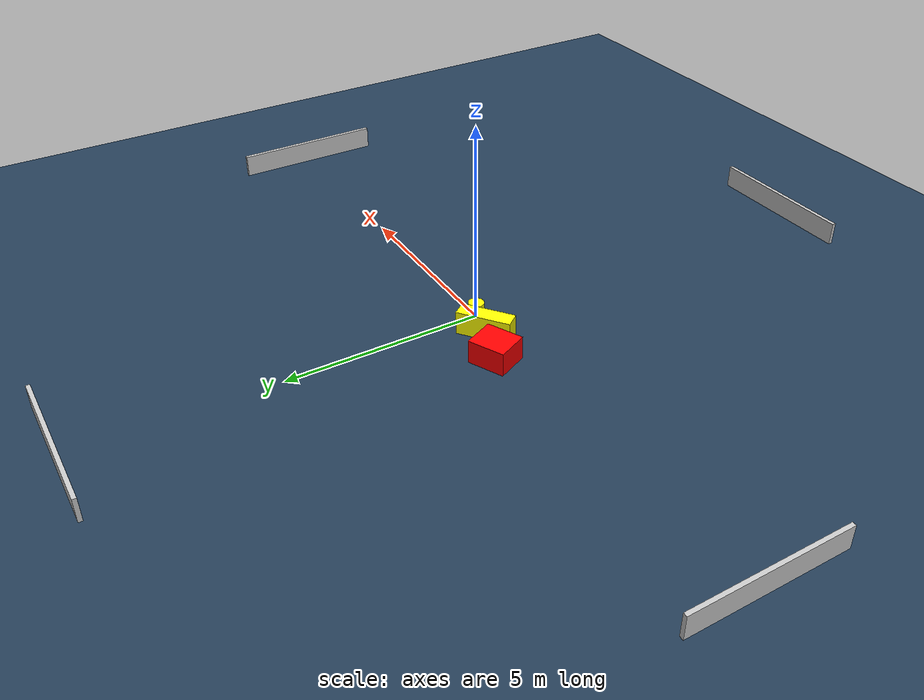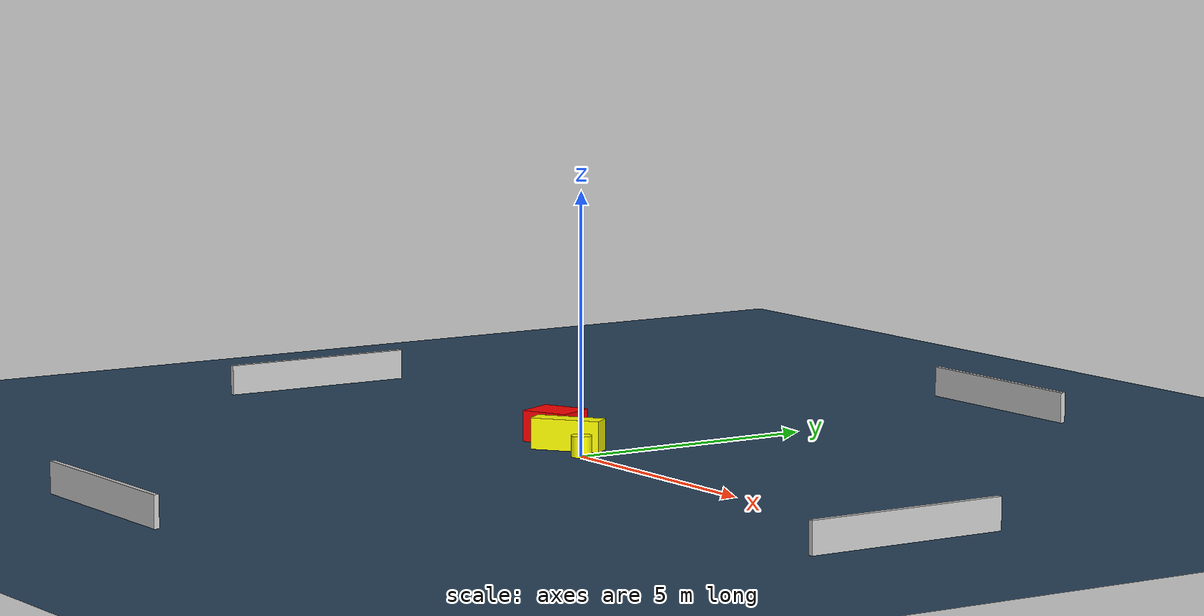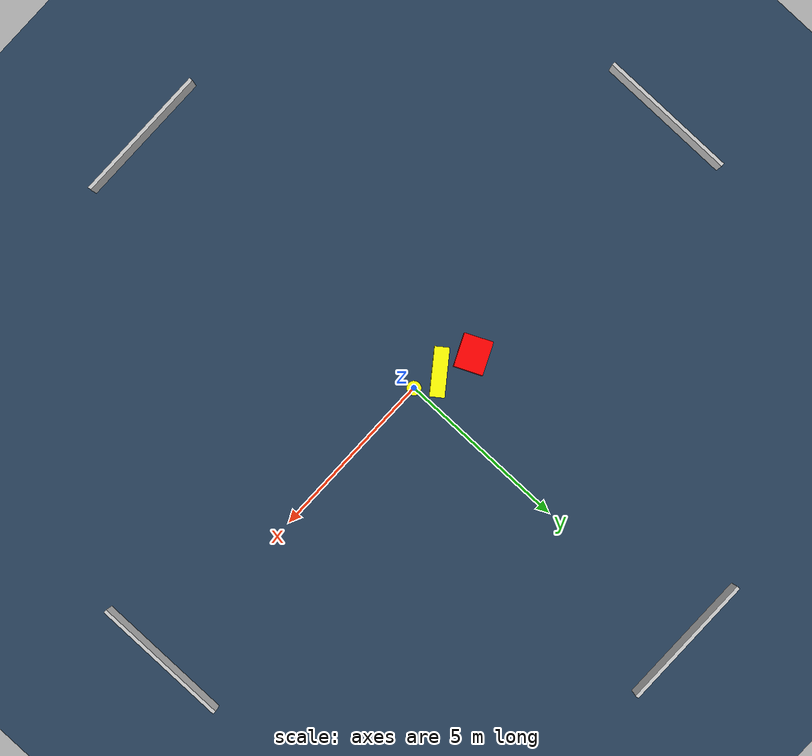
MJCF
<?xml version="1.0" ?>
<mujoco model="generated_environment">
  <option timestep="0.01" integrator="RK4" cone="elliptic"/>
  <default>
    <geom density="1"/>
  </default>
  <asset>
    <texture builtin="gradient" height="3072" name="skybox" rgb1="0.3 0.5 0.7" rgb2="0 0 0" type="skybox" width="512"/>
    <texture builtin="checker" height="300" name="groundplane" rgb1="0.2 0.3 0.4" rgb2="0.1 0.2 0.3" type="2d" width="300"/>
    <material name="groundplane" reflectance="0.2" texrepeat="5 5" texture="groundplane"/>
  </asset>
  <worldbody>
    <light dir="0 0 -1" directional="true" pos="0 0 1.5"/>
    <geom condim="3" friction="0.5 0.005 0.001" material="groundplane" name="floor" pos="0 0 0" size="0 0 0.05" type="plane"/>
    <body name="walls">
      <geom name="wall_1" condim="4" pos="-10.0 0.0 0.3" rgba="0.800000011920929 0.800000011920929 0.800000011920929 1.0" size="0.05 2.0 0.3" type="box"/>
      <geom name="wall_2" condim="4" pos="10.0 0.0 0.3" rgba="0.800000011920929 0.800000011920929 0.800000011920929 1.0" size="0.05 2.0 0.3" type="box"/>
      <geom name="wall_3" condim="4" pos="0.0 -10.0 0.3" rgba="0.800000011920929 0.800000011920929 0.800000011920929 1.0" size="2.0 0.05 0.3" type="box"/>
      <geom name="wall_4" condim="4" pos="0.0 10.0 0.3" rgba="0.800000011920929 0.800000011920929 0.800000011920929 1.0" size="2.0 0.05 0.3" type="box"/>
    </body>
    <body name="robot">
      <joint name="joint_x" type="slide" pos="0 0 0" axis="1 0 0"/>
      <joint name="joint_y" type="slide" pos="0 0 0" axis="0 1 0"/>
      <geom name="robot" type="cylinder" pos="0.0 0.0 0.2" size="0.2 0.2 0.0" mass="5.0" friction="1.0 0.005 0.0001" condim="4" rgba="1.0 1.0 0.0 1.0"/>
    </body>
    <body name="obstacle_1_movable">
      <geom name="obstacle_1_movable" condim="4" pos="-0.781716950628433 0.20898275830824473 0.3" euler="0 0 216.9325889757727" friction="0.0 0.005 0.001" rgba="1.0 1.0 0.0 1.0" size="0.6801863855093093 0.2067762000074309 0.3" type="box" mass="0.1"/>
      <joint type="free"/>
    </body>
    <body name="obstacle_2_static">
      <geom name="obstacle_2_static" condim="4" pos="-1.7556590259762916 0.5495182628125186 0.3" euler="0 0 294.77557620791004" friction="0.0 0.005 0.001" rgba="1.0 0.0 0.0 1.0" size="0.41132764016918555 0.47363778177629506 0.3" type="box"/>
    </body>
  </worldbody>
  <actuator>
    <motor name="actuator_x" joint="joint_x" gear="1" ctrlrange="-1 1"/>
    <motor name="actuator_y" joint="joint_y" gear="1" ctrlrange="-1 1"/>
  </actuator>
</mujoco>
